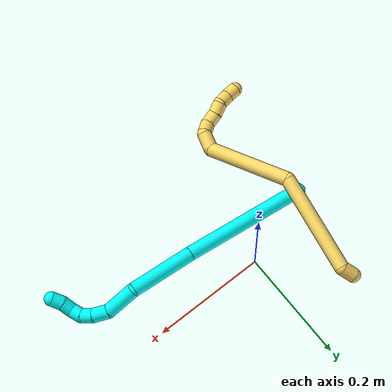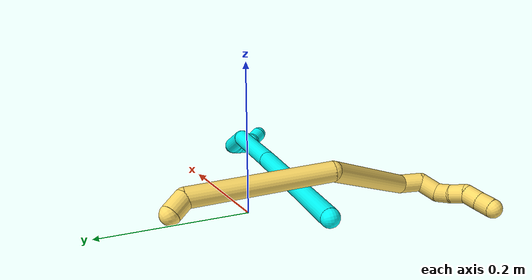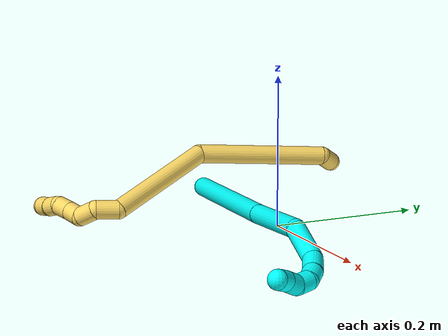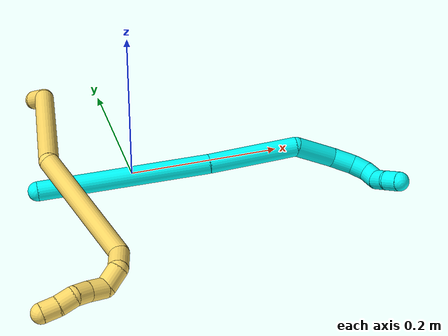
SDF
<sdf version="1.7">
 <world name="default">
  <model name="photoneo_s_sensor">
   <static>1</static>
   <pose>0 0 2 1.57079 1.57079 3.14159</pose>
   <link name="link">
    <inertial><mass>0.1</mass></inertial>
    <sensor name="sensor" type="depth">
     <update_rate>30</update_rate>
     <camera>
      <horizontal_fov>1.22</horizontal_fov>
      <image><width>1920</width><height>1200</height><format>B8G8R8</format></image>
      <clip><near>0.1</near><far>4</far></clip>
      <depth_camera><output>points</output></depth_camera>
     </camera>
     <plugin name="camera_plugin" filename="libgazebo_ros_depth_camera.so">
      <baseline>0.2</baseline>
      <alwaysOn>1</alwaysOn>
      <updateRate>0.0</updateRate>
      <cameraName>camera_ir</cameraName>
      <imageTopicName>/camera/color/image_raw</imageTopicName>
      <cameraInfoTopicName>/camera/color/camera_info</cameraInfoTopicName>
      <depthImageTopicName>/camera/depth/image_raw</depthImageTopicName>
      <depthImageCameraInfoTopicName>/camera/depth/camera_info</depthImageCameraInfoTopicName>
      <pointCloudTopicName>/camera/depth/points</pointCloudTopicName>
      <frameName>fr_optical</frameName>
      <pointCloudCutoff>0.1</pointCloudCutoff>
      <pointCloudCutoffMax>2.0</pointCloudCutoffMax>
      <distortionK1>0</distortionK1>
      <distortionK2>0</distortionK2>
      <distortionK3>0</distortionK3>
      <distortionT1>0</distortionT1>
      <distortionT2>0</distortionT2>
      <CxPrime>0</CxPrime>
      <Cx>0</Cx>
      <Cy>0</Cy>
      <focalLength>0</focalLength>
      <hackBaseline>0</hackBaseline>
     </plugin>
    </sensor>
   </link>
  </model>
  <model name="bin">
   <static>1</static>
   <link name="bottom">
    <collision name="collision-bottom">
     <pose>0 0 -0.01 0 -0 0</pose>
     <geometry><box><size>0.8 0.6 0.02</size></box></geometry>
     <surface>
      <friction><ode><mu>100</mu><mu2>100</mu2></ode></friction>
      <contact><collide_bitmask>65535</collide_bitmask></contact>
     </surface>
    </collision>
   </link>
   <link name="west_wall">
    <collision name="collision-west_wall">
     <pose>-0.41 0 0.1 0 -0 0</pose>
     <geometry><box><size>0.02 0.6 0.2</size></box></geometry>
     <surface>
      <friction><ode><mu>100</mu><mu2>100</mu2></ode></friction>
      <contact><collide_bitmask>65535</collide_bitmask></contact>
     </surface>
    </collision>
   </link>
   <link name="east_wall">
    <collision name="collision-east_wall">
     <pose>0.41 0 0.1 0 -0 0</pose>
     <geometry><box><size>0.02 0.6 0.2</size></box></geometry>
     <surface>
      <friction><ode><mu>100</mu><mu2>100</mu2></ode></friction>
      <contact><collide_bitmask>65535</collide_bitmask></contact>
     </surface>
    </collision>
   </link>
   <link name="south_wall">
    <collision name="collision-south_wall">
     <pose>0 -0.31 0.1 0 -0 0</pose>
     <geometry><box><size>0.8 0.02 0.2</size></box></geometry>
     <surface>
      <friction><ode><mu>100</mu><mu2>100</mu2></ode></friction>
      <contact><collide_bitmask>65535</collide_bitmask></contact>
     </surface>
    </collision>
   </link>
   <link name="north_wall">
    <collision name="collision-north_wall">
     <pose>0 0.31 0.1 0 -0 0</pose>
     <geometry><box><size>0.8 0.02 0.2</size></box></geometry>
     <surface>
      <friction><ode><mu>100</mu><mu2>100</mu2></ode></friction>
      <contact><collide_bitmask>65535</collide_bitmask></contact>
     </surface>
    </collision>
   </link>
  </model>
  <model name="3">
   <static>0</static>
   <link name="3">
    <collision name="collision-cylinder-e_1_1_4">
     <pose>0.109818 -0.007291 0.001896 1.31635 1.50231 1.25063</pose>
     <geometry><cylinder><radius>0.0125</radius><length>0.220152</length></cylinder></geometry>
     <surface>
      <friction><ode><mu>1.16</mu><mu2>1.16</mu2><slip1>0</slip1><slip2>0</slip2></ode></friction>
      <contact><ode><kp>1e+06</kp><kd>1</kd><max_vel>0</max_vel><min_depth>0.001</min_depth></ode></contact>
     </surface>
    </collision>
    <visual name="visual-cylinder-e_1_1_4">
     <pose>0.109818 -0.007291 0.001896 1.31635 1.50231 1.25063</pose>
     <geometry><cylinder><radius>0.0125</radius><length>0.220152</length></cylinder></geometry>
     <material><ambient>0.003922 1 0.996078 1</ambient></material>
    </visual>
    <collision name="collision-cylinder-e_2_4_5">
     <pose>0.277168 -0.017195 0.002447 2.04603 1.51974 2.00009</pose>
     <geometry><cylinder><radius>0.0125</radius><length>0.115214</length></cylinder></geometry>
     <surface>
      <friction><ode><mu>1.16</mu><mu2>1.16</mu2><slip1>0</slip1><slip2>0</slip2></ode></friction>
      <contact><ode><kp>1e+06</kp><kd>1</kd><max_vel>0</max_vel><min_depth>0.001</min_depth></ode></contact>
     </surface>
    </collision>
    <visual name="visual-cylinder-e_2_4_5">
     <pose>0.277168 -0.017195 0.002447 2.04603 1.51974 2.00009</pose>
     <geometry><cylinder><radius>0.0125</radius><length>0.115214</length></cylinder></geometry>
     <material><ambient>0.003922 1 0.996078 1</ambient></material>
    </visual>
    <collision name="collision-cylinder-e_3_5_6">
     <pose>0.358041 -0.034934 -0.001292 1.72779 0.990184 1.12744</pose>
     <geometry><cylinder><radius>0.0125</radius><length>0.055833</length></cylinder></geometry>
     <surface>
      <friction><ode><mu>1.16</mu><mu2>1.16</mu2><slip1>0</slip1><slip2>0</slip2></ode></friction>
      <contact><ode><kp>1e+06</kp><kd>1</kd><max_vel>0</max_vel><min_depth>0.001</min_depth></ode></contact>
     </surface>
    </collision>
    <visual name="visual-cylinder-e_3_5_6">
     <pose>0.358041 -0.034934 -0.001292 1.72779 0.990184 1.12744</pose>
     <geometry><cylinder><radius>0.0125</radius><length>0.055833</length></cylinder></geometry>
     <material><ambient>0.003922 1 0.996078 1</ambient></material>
    </visual>
    <collision name="collision-cylinder-e_4_6_7">
     <pose>0.393406 -0.056171 0.000899 0.927175 1.00463 0.536018</pose>
     <geometry><cylinder><radius>0.0125</radius><length>0.028491</length></cylinder></geometry>
     <surface>
      <friction><ode><mu>1.16</mu><mu2>1.16</mu2><slip1>0</slip1><slip2>0</slip2></ode></friction>
      <contact><ode><kp>1e+06</kp><kd>1</kd><max_vel>0</max_vel><min_depth>0.001</min_depth></ode></contact>
     </surface>
    </collision>
    <visual name="visual-cylinder-e_4_6_7">
     <pose>0.393406 -0.056171 0.000899 0.927175 1.00463 0.536018</pose>
     <geometry><cylinder><radius>0.0125</radius><length>0.028491</length></cylinder></geometry>
     <material><ambient>0.003922 1 0.996078 1</ambient></material>
    </visual>
    <collision name="collision-cylinder-e_5_7_8">
     <pose>0.412762 -0.066414 0.01093 0.648927 0.820655 0.290577</pose>
     <geometry><cylinder><radius>0.0125</radius><length>0.020049</length></cylinder></geometry>
     <surface>
      <friction><ode><mu>1.16</mu><mu2>1.16</mu2><slip1>0</slip1><slip2>0</slip2></ode></friction>
      <contact><ode><kp>1e+06</kp><kd>1</kd><max_vel>0</max_vel><min_depth>0.001</min_depth></ode></contact>
     </surface>
    </collision>
    <visual name="visual-cylinder-e_5_7_8">
     <pose>0.412762 -0.066414 0.01093 0.648927 0.820655 0.290577</pose>
     <geometry><cylinder><radius>0.0125</radius><length>0.020049</length></cylinder></geometry>
     <material><ambient>0.003922 1 0.996078 1</ambient></material>
    </visual>
    <collision name="collision-cylinder-e_6_8_9">
     <pose>0.423899 -0.073229 0.025305 0.292025 0.387181 0.057645</pose>
     <geometry><cylinder><radius>0.0125</radius><length>0.02014</length></cylinder></geometry>
     <surface>
      <friction><ode><mu>1.16</mu><mu2>1.16</mu2><slip1>0</slip1><slip2>0</slip2></ode></friction>
      <contact><ode><kp>1e+06</kp><kd>1</kd><max_vel>0</max_vel><min_depth>0.001</min_depth></ode></contact>
     </surface>
    </collision>
    <visual name="visual-cylinder-e_6_8_9">
     <pose>0.423899 -0.073229 0.025305 0.292025 0.387181 0.057645</pose>
     <geometry><cylinder><radius>0.0125</radius><length>0.02014</length></cylinder></geometry>
     <material><ambient>0.003922 1 0.996078 1</ambient></material>
    </visual>
    <collision name="collision-cylinder-e_7_9_10">
     <pose>0.431949 -0.07311 0.042871 -0.313909 0.437647 -0.070358</pose>
     <geometry><cylinder><radius>0.0125</radius><length>0.020048</length></cylinder></geometry>
     <surface>
      <friction><ode><mu>1.16</mu><mu2>1.16</mu2><slip1>0</slip1><slip2>0</slip2></ode></friction>
      <contact><ode><kp>1e+06</kp><kd>1</kd><max_vel>0</max_vel><min_depth>0.001</min_depth></ode></contact>
     </surface>
    </collision>
    <visual name="visual-cylinder-e_7_9_10">
     <pose>0.431949 -0.07311 0.042871 -0.313909 0.437647 -0.070358</pose>
     <geometry><cylinder><radius>0.0125</radius><length>0.020048</length></cylinder></geometry>
     <material><ambient>0.003922 1 0.996078 1</ambient></material>
    </visual>
    <collision name="collision-cylinder-e_8_10_2">
     <pose>0.442472 -0.068752 0.059183 -0.199793 0.675414 -0.070364</pose>
     <geometry><cylinder><radius>0.0125</radius><length>0.020073</length></cylinder></geometry>
     <surface>
      <friction><ode><mu>1.16</mu><mu2>1.16</mu2><slip1>0</slip1><slip2>0</slip2></ode></friction>
      <contact><ode><kp>1e+06</kp><kd>1</kd><max_vel>0</max_vel><min_depth>0.001</min_depth></ode></contact>
     </surface>
    </collision>
    <visual name="visual-cylinder-e_8_10_2">
     <pose>0.442472 -0.068752 0.059183 -0.199793 0.675414 -0.070364</pose>
     <geometry><cylinder><radius>0.0125</radius><length>0.020073</length></cylinder></geometry>
     <material><ambient>0.003922 1 0.996078 1</ambient></material>
    </visual>
    <collision name="collision-sphere-2">
     <pose>0.448747 -0.067197 0.06686 0 -0 0</pose>
     <geometry><sphere><radius>0.0125</radius></sphere></geometry>
     <surface>
      <friction><ode><mu>1.16</mu><mu2>1.16</mu2><slip1>0</slip1><slip2>0</slip2></ode></friction>
      <contact><ode><kp>1e+06</kp><kd>1</kd><max_vel>0</max_vel><min_depth>0.001</min_depth></ode></contact>
     </surface>
    </collision>
    <visual name="visual-sphere-2">
     <pose>0.448747 -0.067197 0.06686 0 -0 0</pose>
     <geometry><sphere><radius>0.0125</radius></sphere></geometry>
     <material><ambient>0.003922 1 0.996078 1</ambient></material>
    </visual>
    <collision name="collision-sphere-10">
     <pose>0.436197 -0.070306 0.051506 0 -0 0</pose>
     <geometry><sphere><radius>0.0125</radius></sphere></geometry>
     <surface>
      <friction><ode><mu>1.16</mu><mu2>1.16</mu2><slip1>0</slip1><slip2>0</slip2></ode></friction>
      <contact><ode><kp>1e+06</kp><kd>1</kd><max_vel>0</max_vel><min_depth>0.001</min_depth></ode></contact>
     </surface>
    </collision>
    <visual name="visual-sphere-10">
     <pose>0.436197 -0.070306 0.051506 0 -0 0</pose>
     <geometry><sphere><radius>0.0125</radius></sphere></geometry>
     <material><ambient>0.003922 1 0.996078 1</ambient></material>
    </visual>
    <collision name="collision-sphere-9">
     <pose>0.427701 -0.075913 0.034235 0 -0 0</pose>
     <geometry><sphere><radius>0.0125</radius></sphere></geometry>
     <surface>
      <friction><ode><mu>1.16</mu><mu2>1.16</mu2><slip1>0</slip1><slip2>0</slip2></ode></friction>
      <contact><ode><kp>1e+06</kp><kd>1</kd><max_vel>0</max_vel><min_depth>0.001</min_depth></ode></contact>
     </surface>
    </collision>
    <visual name="visual-sphere-9">
     <pose>0.427701 -0.075913 0.034235 0 -0 0</pose>
     <geometry><sphere><radius>0.0125</radius></sphere></geometry>
     <material><ambient>0.003922 1 0.996078 1</ambient></material>
    </visual>
    <collision name="collision-sphere-4">
     <pose>0.219636 -0.014581 0.003792 0 -0 0</pose>
     <geometry><sphere><radius>0.0125</radius></sphere></geometry>
     <surface>
      <friction><ode><mu>1.16</mu><mu2>1.16</mu2><slip1>0</slip1><slip2>0</slip2></ode></friction>
      <contact><ode><kp>1e+06</kp><kd>1</kd><max_vel>0</max_vel><min_depth>0.001</min_depth></ode></contact>
     </surface>
    </collision>
    <visual name="visual-sphere-4">
     <pose>0.219636 -0.014581 0.003792 0 -0 0</pose>
     <geometry><sphere><radius>0.0125</radius></sphere></geometry>
     <material><ambient>0.003922 1 0.996078 1</ambient></material>
    </visual>
    <collision name="collision-sphere-1">
     <geometry><sphere><radius>0.0125</radius></sphere></geometry>
     <surface>
      <friction><ode><mu>1.16</mu><mu2>1.16</mu2><slip1>0</slip1><slip2>0</slip2></ode></friction>
      <contact><ode><kp>1e+06</kp><kd>1</kd><max_vel>0</max_vel><min_depth>0.001</min_depth></ode></contact>
     </surface>
    </collision>
    <visual name="visual-sphere-1">
     <geometry><sphere><radius>0.0125</radius></sphere></geometry>
     <material><ambient>0.003922 1 0.996078 1</ambient></material>
    </visual>
    <collision name="collision-sphere-8">
     <pose>0.420096 -0.070544 0.016375 0 -0 0</pose>
     <geometry><sphere><radius>0.0125</radius></sphere></geometry>
     <surface>
      <friction><ode><mu>1.16</mu><mu2>1.16</mu2><slip1>0</slip1><slip2>0</slip2></ode></friction>
      <contact><ode><kp>1e+06</kp><kd>1</kd><max_vel>0</max_vel><min_depth>0.001</min_depth></ode></contact>
     </surface>
    </collision>
    <visual name="visual-sphere-8">
     <pose>0.420096 -0.070544 0.016375 0 -0 0</pose>
     <geometry><sphere><radius>0.0125</radius></sphere></geometry>
     <material><ambient>0.003922 1 0.996078 1</ambient></material>
    </visual>
    <collision name="collision-sphere-5">
     <pose>0.3347 -0.019809 0.001102 0 -0 0</pose>
     <geometry><sphere><radius>0.0125</radius></sphere></geometry>
     <surface>
      <friction><ode><mu>1.16</mu><mu2>1.16</mu2><slip1>0</slip1><slip2>0</slip2></ode></friction>
      <contact><ode><kp>1e+06</kp><kd>1</kd><max_vel>0</max_vel><min_depth>0.001</min_depth></ode></contact>
     </surface>
    </collision>
    <visual name="visual-sphere-5">
     <pose>0.3347 -0.019809 0.001102 0 -0 0</pose>
     <geometry><sphere><radius>0.0125</radius></sphere></geometry>
     <material><ambient>0.003922 1 0.996078 1</ambient></material>
    </visual>
    <collision name="collision-sphere-6">
     <pose>0.381383 -0.050059 -0.003686 0 -0 0</pose>
     <geometry><sphere><radius>0.0125</radius></sphere></geometry>
     <surface>
      <friction><ode><mu>1.16</mu><mu2>1.16</mu2><slip1>0</slip1><slip2>0</slip2></ode></friction>
      <contact><ode><kp>1e+06</kp><kd>1</kd><max_vel>0</max_vel><min_depth>0.001</min_depth></ode></contact>
     </surface>
    </collision>
    <visual name="visual-sphere-6">
     <pose>0.381383 -0.050059 -0.003686 0 -0 0</pose>
     <geometry><sphere><radius>0.0125</radius></sphere></geometry>
     <material><ambient>0.003922 1 0.996078 1</ambient></material>
    </visual>
    <collision name="collision-sphere-7">
     <pose>0.405428 -0.062284 0.005485 0 -0 0</pose>
     <geometry><sphere><radius>0.0125</radius></sphere></geometry>
     <surface>
      <friction><ode><mu>1.16</mu><mu2>1.16</mu2><slip1>0</slip1><slip2>0</slip2></ode></friction>
      <contact><ode><kp>1e+06</kp><kd>1</kd><max_vel>0</max_vel><min_depth>0.001</min_depth></ode></contact>
     </surface>
    </collision>
    <visual name="visual-sphere-7">
     <pose>0.405428 -0.062284 0.005485 0 -0 0</pose>
     <geometry><sphere><radius>0.0125</radius></sphere></geometry>
     <material><ambient>0.003922 1 0.996078 1</ambient></material>
    </visual>
    <inertial>
     <pose>0.243327 -0.025578 0.006858 0 -0 0</pose>
     <mass>0.5</mass>
     <inertia>
      <ixx>0.000135</ixx>
      <ixy>0</ixy>
      <ixz>0</ixz>
      <iyy>0.001114</iyy>
      <iyz>0</iyz>
      <izz>-0.000966</izz>
     </inertia>
    </inertial>
   </link>
   <pose>-0.13292 -0.046187 0.029423 1.44852 -0.126014 -0.079773</pose>
  </model>
  <model name="5">
   <static>0</static>
   <link name="5">
    <collision name="collision-cylinder-e_1_1_4">
     <pose>0.001099 0.004562 -0.011476 -2.76323 0.088797 -0.456</pose>
     <geometry><cylinder><radius>0.0125</radius><length>0.024796</length></cylinder></geometry>
     <surface>
      <friction><ode><mu>1.16</mu><mu2>1.16</mu2><slip1>0</slip1><slip2>0</slip2></ode></friction>
      <contact><ode><kp>1e+06</kp><kd>1</kd><max_vel>0</max_vel><min_depth>0.001</min_depth></ode></contact>
     </surface>
    </collision>
    <visual name="visual-cylinder-e_1_1_4">
     <pose>0.001099 0.004562 -0.011476 -2.76323 0.088797 -0.456</pose>
     <geometry><cylinder><radius>0.0125</radius><length>0.024796</length></cylinder></geometry>
     <material><ambient>1 0.858824 0.4 1</ambient></material>
    </visual>
    <collision name="collision-cylinder-e_2_4_5">
     <pose>-0.007654 -0.019568 -0.105228 2.80606 -0.112597 -0.642494</pose>
     <geometry><cylinder><radius>0.0125</radius><length>0.17538</length></cylinder></geometry>
     <surface>
      <friction><ode><mu>1.16</mu><mu2>1.16</mu2><slip1>0</slip1><slip2>0</slip2></ode></friction>
      <contact><ode><kp>1e+06</kp><kd>1</kd><max_vel>0</max_vel><min_depth>0.001</min_depth></ode></contact>
     </surface>
    </collision>
    <visual name="visual-cylinder-e_2_4_5">
     <pose>-0.007654 -0.019568 -0.105228 2.80606 -0.112597 -0.642494</pose>
     <geometry><cylinder><radius>0.0125</radius><length>0.17538</length></cylinder></geometry>
     <material><ambient>1 0.858824 0.4 1</ambient></material>
    </visual>
    <collision name="collision-cylinder-e_3_5_6">
     <pose>-0.067564 -0.047739 -0.248391 -3.13305 -0.688071 3.11775</pose>
     <geometry><cylinder><radius>0.0125</radius><length>0.157648</length></cylinder></geometry>
     <surface>
      <friction><ode><mu>1.16</mu><mu2>1.16</mu2><slip1>0</slip1><slip2>0</slip2></ode></friction>
      <contact><ode><kp>1e+06</kp><kd>1</kd><max_vel>0</max_vel><min_depth>0.001</min_depth></ode></contact>
     </surface>
    </collision>
    <visual name="visual-cylinder-e_3_5_6">
     <pose>-0.067564 -0.047739 -0.248391 -3.13305 -0.688071 3.11775</pose>
     <geometry><cylinder><radius>0.0125</radius><length>0.157648</length></cylinder></geometry>
     <material><ambient>1 0.858824 0.4 1</ambient></material>
    </visual>
    <collision name="collision-cylinder-e_4_6_7">
     <pose>-0.119097 -0.054084 -0.322704 2.66886 -0.097596 -0.400082</pose>
     <geometry><cylinder><radius>0.0125</radius><length>0.030304</length></cylinder></geometry>
     <surface>
      <friction><ode><mu>1.16</mu><mu2>1.16</mu2><slip1>0</slip1><slip2>0</slip2></ode></friction>
      <contact><ode><kp>1e+06</kp><kd>1</kd><max_vel>0</max_vel><min_depth>0.001</min_depth></ode></contact>
     </surface>
    </collision>
    <visual name="visual-cylinder-e_4_6_7">
     <pose>-0.119097 -0.054084 -0.322704 2.66886 -0.097596 -0.400082</pose>
     <geometry><cylinder><radius>0.0125</radius><length>0.030304</length></cylinder></geometry>
     <material><ambient>1 0.858824 0.4 1</ambient></material>
    </visual>
    <collision name="collision-cylinder-e_5_7_8">
     <pose>-0.124119 -0.073291 -0.34021 1.89012 -0.266292 -0.366551</pose>
     <geometry><cylinder><radius>0.0125</radius><length>0.026944</length></cylinder></geometry>
     <surface>
      <friction><ode><mu>1.16</mu><mu2>1.16</mu2><slip1>0</slip1><slip2>0</slip2></ode></friction>
      <contact><ode><kp>1e+06</kp><kd>1</kd><max_vel>0</max_vel><min_depth>0.001</min_depth></ode></contact>
     </surface>
    </collision>
    <visual name="visual-cylinder-e_5_7_8">
     <pose>-0.124119 -0.073291 -0.34021 1.89012 -0.266292 -0.366551</pose>
     <geometry><cylinder><radius>0.0125</radius><length>0.026944</length></cylinder></geometry>
     <material><ambient>1 0.858824 0.4 1</ambient></material>
    </visual>
    <collision name="collision-cylinder-e_6_8_9">
     <pose>-0.122498 -0.095477 -0.346336 1.77571 0.474536 0.577861</pose>
     <geometry><cylinder><radius>0.0125</radius><length>0.022612</length></cylinder></geometry>
     <surface>
      <friction><ode><mu>1.16</mu><mu2>1.16</mu2><slip1>0</slip1><slip2>0</slip2></ode></friction>
      <contact><ode><kp>1e+06</kp><kd>1</kd><max_vel>0</max_vel><min_depth>0.001</min_depth></ode></contact>
     </surface>
    </collision>
    <visual name="visual-cylinder-e_6_8_9">
     <pose>-0.122498 -0.095477 -0.346336 1.77571 0.474536 0.577861</pose>
     <geometry><cylinder><radius>0.0125</radius><length>0.022612</length></cylinder></geometry>
     <material><ambient>1 0.858824 0.4 1</ambient></material>
    </visual>
    <collision name="collision-cylinder-e_7_9_10">
     <pose>-0.112921 -0.113791 -0.352178 1.9922 0.443793 0.670447</pose>
     <geometry><cylinder><radius>0.0125</radius><length>0.020549</length></cylinder></geometry>
     <surface>
      <friction><ode><mu>1.16</mu><mu2>1.16</mu2><slip1>0</slip1><slip2>0</slip2></ode></friction>
      <contact><ode><kp>1e+06</kp><kd>1</kd><max_vel>0</max_vel><min_depth>0.001</min_depth></ode></contact>
     </surface>
    </collision>
    <visual name="visual-cylinder-e_7_9_10">
     <pose>-0.112921 -0.113791 -0.352178 1.9922 0.443793 0.670447</pose>
     <geometry><cylinder><radius>0.0125</radius><length>0.020549</length></cylinder></geometry>
     <material><ambient>1 0.858824 0.4 1</ambient></material>
    </visual>
    <collision name="collision-cylinder-e_8_10_11">
     <pose>-0.10785 -0.132707 -0.356404 1.61197 0.062927 0.065571</pose>
     <geometry><cylinder><radius>0.0125</radius><length>0.020958</length></cylinder></geometry>
     <surface>
      <friction><ode><mu>1.16</mu><mu2>1.16</mu2><slip1>0</slip1><slip2>0</slip2></ode></friction>
      <contact><ode><kp>1e+06</kp><kd>1</kd><max_vel>0</max_vel><min_depth>0.001</min_depth></ode></contact>
     </surface>
    </collision>
    <visual name="visual-cylinder-e_8_10_11">
     <pose>-0.10785 -0.132707 -0.356404 1.61197 0.062927 0.065571</pose>
     <geometry><cylinder><radius>0.0125</radius><length>0.020958</length></cylinder></geometry>
     <material><ambient>1 0.858824 0.4 1</ambient></material>
    </visual>
    <collision name="collision-cylinder-e_9_11_2">
     <pose>-0.105076 -0.153337 -0.356459 1.53394 0.204773 0.197411</pose>
     <geometry><cylinder><radius>0.0125</radius><length>0.020809</length></cylinder></geometry>
     <surface>
      <friction><ode><mu>1.16</mu><mu2>1.16</mu2><slip1>0</slip1><slip2>0</slip2></ode></friction>
      <contact><ode><kp>1e+06</kp><kd>1</kd><max_vel>0</max_vel><min_depth>0.001</min_depth></ode></contact>
     </surface>
    </collision>
    <visual name="visual-cylinder-e_9_11_2">
     <pose>-0.105076 -0.153337 -0.356459 1.53394 0.204773 0.197411</pose>
     <geometry><cylinder><radius>0.0125</radius><length>0.020809</length></cylinder></geometry>
     <material><ambient>1 0.858824 0.4 1</ambient></material>
    </visual>
    <collision name="collision-sphere-2">
     <pose>-0.10296 -0.163517 -0.356084 0 -0 0</pose>
     <geometry><sphere><radius>0.0125</radius></sphere></geometry>
     <surface>
      <friction><ode><mu>1.16</mu><mu2>1.16</mu2><slip1>0</slip1><slip2>0</slip2></ode></friction>
      <contact><ode><kp>1e+06</kp><kd>1</kd><max_vel>0</max_vel><min_depth>0.001</min_depth></ode></contact>
     </surface>
    </collision>
    <visual name="visual-sphere-2">
     <pose>-0.10296 -0.163517 -0.356084 0 -0 0</pose>
     <geometry><sphere><radius>0.0125</radius></sphere></geometry>
     <material><ambient>1 0.858824 0.4 1</ambient></material>
    </visual>
    <collision name="collision-sphere-11">
     <pose>-0.107191 -0.143157 -0.356835 0 -0 0</pose>
     <geometry><sphere><radius>0.0125</radius></sphere></geometry>
     <surface>
      <friction><ode><mu>1.16</mu><mu2>1.16</mu2><slip1>0</slip1><slip2>0</slip2></ode></friction>
      <contact><ode><kp>1e+06</kp><kd>1</kd><max_vel>0</max_vel><min_depth>0.001</min_depth></ode></contact>
     </surface>
    </collision>
    <visual name="visual-sphere-11">
     <pose>-0.107191 -0.143157 -0.356835 0 -0 0</pose>
     <geometry><sphere><radius>0.0125</radius></sphere></geometry>
     <material><ambient>1 0.858824 0.4 1</ambient></material>
    </visual>
    <collision name="collision-sphere-10">
     <pose>-0.108509 -0.122258 -0.355974 0 -0 0</pose>
     <geometry><sphere><radius>0.0125</radius></sphere></geometry>
     <surface>
      <friction><ode><mu>1.16</mu><mu2>1.16</mu2><slip1>0</slip1><slip2>0</slip2></ode></friction>
      <contact><ode><kp>1e+06</kp><kd>1</kd><max_vel>0</max_vel><min_depth>0.001</min_depth></ode></contact>
     </surface>
    </collision>
    <visual name="visual-sphere-10">
     <pose>-0.108509 -0.122258 -0.355974 0 -0 0</pose>
     <geometry><sphere><radius>0.0125</radius></sphere></geometry>
     <material><ambient>1 0.858824 0.4 1</ambient></material>
    </visual>
    <collision name="collision-sphere-9">
     <pose>-0.117332 -0.105323 -0.348383 0 -0 0</pose>
     <geometry><sphere><radius>0.0125</radius></sphere></geometry>
     <surface>
      <friction><ode><mu>1.16</mu><mu2>1.16</mu2><slip1>0</slip1><slip2>0</slip2></ode></friction>
      <contact><ode><kp>1e+06</kp><kd>1</kd><max_vel>0</max_vel><min_depth>0.001</min_depth></ode></contact>
     </surface>
    </collision>
    <visual name="visual-sphere-9">
     <pose>-0.117332 -0.105323 -0.348383 0 -0 0</pose>
     <geometry><sphere><radius>0.0125</radius></sphere></geometry>
     <material><ambient>1 0.858824 0.4 1</ambient></material>
    </visual>
    <collision name="collision-sphere-4">
     <pose>0.002199 0.009124 -0.022952 0 -0 0</pose>
     <geometry><sphere><radius>0.0125</radius></sphere></geometry>
     <surface>
      <friction><ode><mu>1.16</mu><mu2>1.16</mu2><slip1>0</slip1><slip2>0</slip2></ode></friction>
      <contact><ode><kp>1e+06</kp><kd>1</kd><max_vel>0</max_vel><min_depth>0.001</min_depth></ode></contact>
     </surface>
    </collision>
    <visual name="visual-sphere-4">
     <pose>0.002199 0.009124 -0.022952 0 -0 0</pose>
     <geometry><sphere><radius>0.0125</radius></sphere></geometry>
     <material><ambient>1 0.858824 0.4 1</ambient></material>
    </visual>
    <collision name="collision-sphere-1">
     <geometry><sphere><radius>0.0125</radius></sphere></geometry>
     <surface>
      <friction><ode><mu>1.16</mu><mu2>1.16</mu2><slip1>0</slip1><slip2>0</slip2></ode></friction>
      <contact><ode><kp>1e+06</kp><kd>1</kd><max_vel>0</max_vel><min_depth>0.001</min_depth></ode></contact>
     </surface>
    </collision>
    <visual name="visual-sphere-1">
     <geometry><sphere><radius>0.0125</radius></sphere></geometry>
     <material><ambient>1 0.858824 0.4 1</ambient></material>
    </visual>
    <collision name="collision-sphere-8">
     <pose>-0.127664 -0.085631 -0.34429 0 -0 0</pose>
     <geometry><sphere><radius>0.0125</radius></sphere></geometry>
     <surface>
      <friction><ode><mu>1.16</mu><mu2>1.16</mu2><slip1>0</slip1><slip2>0</slip2></ode></friction>
      <contact><ode><kp>1e+06</kp><kd>1</kd><max_vel>0</max_vel><min_depth>0.001</min_depth></ode></contact>
     </surface>
    </collision>
    <visual name="visual-sphere-8">
     <pose>-0.127664 -0.085631 -0.34429 0 -0 0</pose>
     <geometry><sphere><radius>0.0125</radius></sphere></geometry>
     <material><ambient>1 0.858824 0.4 1</ambient></material>
    </visual>
    <collision name="collision-sphere-5">
     <pose>-0.017507 -0.048259 -0.187503 0 -0 0</pose>
     <geometry><sphere><radius>0.0125</radius></sphere></geometry>
     <surface>
      <friction><ode><mu>1.16</mu><mu2>1.16</mu2><slip1>0</slip1><slip2>0</slip2></ode></friction>
      <contact><ode><kp>1e+06</kp><kd>1</kd><max_vel>0</max_vel><min_depth>0.001</min_depth></ode></contact>
     </surface>
    </collision>
    <visual name="visual-sphere-5">
     <pose>-0.017507 -0.048259 -0.187503 0 -0 0</pose>
     <geometry><sphere><radius>0.0125</radius></sphere></geometry>
     <material><ambient>1 0.858824 0.4 1</ambient></material>
    </visual>
    <collision name="collision-sphere-6">
     <pose>-0.117621 -0.047218 -0.309278 0 -0 0</pose>
     <geometry><sphere><radius>0.0125</radius></sphere></geometry>
     <surface>
      <friction><ode><mu>1.16</mu><mu2>1.16</mu2><slip1>0</slip1><slip2>0</slip2></ode></friction>
      <contact><ode><kp>1e+06</kp><kd>1</kd><max_vel>0</max_vel><min_depth>0.001</min_depth></ode></contact>
     </surface>
    </collision>
    <visual name="visual-sphere-6">
     <pose>-0.117621 -0.047218 -0.309278 0 -0 0</pose>
     <geometry><sphere><radius>0.0125</radius></sphere></geometry>
     <material><ambient>1 0.858824 0.4 1</ambient></material>
    </visual>
    <collision name="collision-sphere-7">
     <pose>-0.120574 -0.060951 -0.33613 0 -0 0</pose>
     <geometry><sphere><radius>0.0125</radius></sphere></geometry>
     <surface>
      <friction><ode><mu>1.16</mu><mu2>1.16</mu2><slip1>0</slip1><slip2>0</slip2></ode></friction>
      <contact><ode><kp>1e+06</kp><kd>1</kd><max_vel>0</max_vel><min_depth>0.001</min_depth></ode></contact>
     </surface>
    </collision>
    <visual name="visual-sphere-7">
     <pose>-0.120574 -0.060951 -0.33613 0 -0 0</pose>
     <geometry><sphere><radius>0.0125</radius></sphere></geometry>
     <material><ambient>1 0.858824 0.4 1</ambient></material>
    </visual>
    <inertial>
     <pose>-0.056914 -0.049855 -0.213597 0 -0 0</pose>
     <mass>0.5</mass>
     <inertia>
      <ixx>-0.000155</ixx>
      <ixy>0</ixy>
      <ixz>0</ixz>
      <iyy>-0.000287</iyy>
      <iyz>0</iyz>
      <izz>0.00039</izz>
     </inertia>
    </inertial>
   </link>
   <pose>-0.100885 0.132812 0.053806 2.30698 -1.0917 2.57875</pose>
  </model>
 </world>
</sdf>
